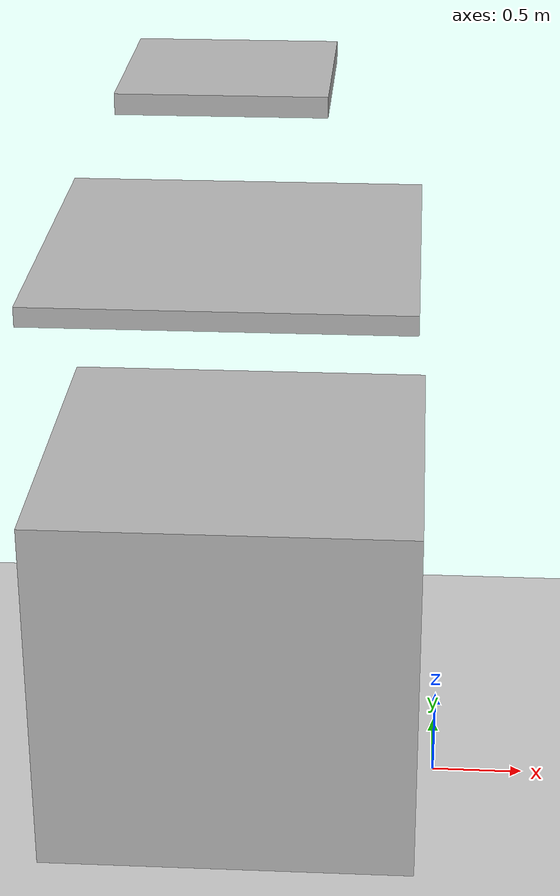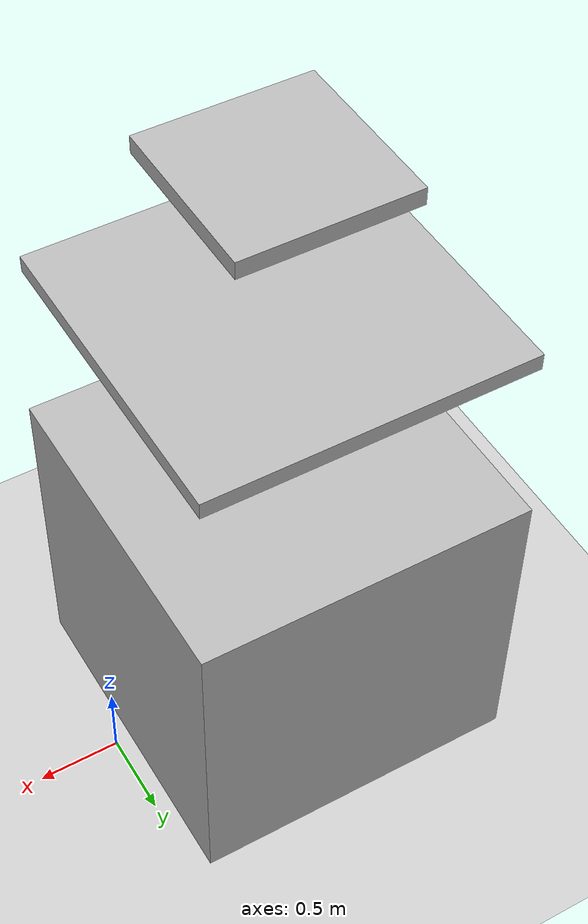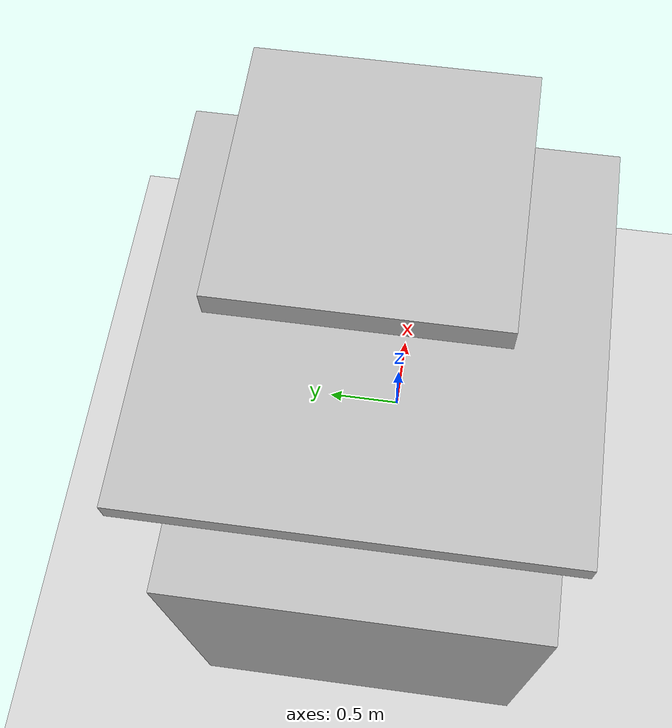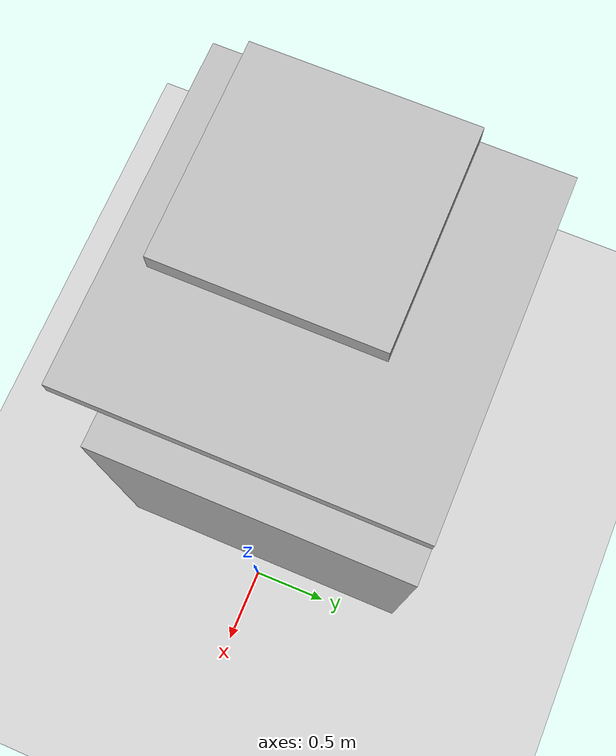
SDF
<?xml version="1.0" ?>
<sdf version='1.6'>

<world name="default">

    <!-- Global light source -->
    <include>
      <uri>model://sun</uri>
    </include>

    <!-- Ground plane -->
    <include>
      <uri>model://ground_plane</uri>
    </include>

    <!-- big box -->
    <model name="my_box">
      <pose>-1.1 0 1 0 0 0</pose>
      <static>true</static>
      <link name="fixed_box">
        <inertial>
          <mass>1000.0</mass>
          <inertia> <!-- inertias are tricky to compute -->
            <!-- http://gazebosim.org/tutorials?tut=inertia&cat=build_robot -->
            <ixx>83.0</ixx>       <!-- for a box: ixx = 0.083 * mass * (y*y + z*z) -->
            <ixy>0.0</ixy>         <!-- for a box: ixy = 0 -->
            <ixz>0.0</ixz>         <!-- for a box: ixz = 0 -->
            <iyy>83.0</iyy>       <!-- for a box: iyy = 0.083 * mass * (x*x + z*z) -->
            <iyz>0.0</iyz>         <!-- for a box: iyz = 0 -->
            <izz>83.0</izz>       <!-- for a box: izz = 0.083 * mass * (x*x + y*y) -->
          </inertia>
        </inertial>
        <collision name="collision">
          <geometry>
            <box>
              <size>2 2 2</size>
            </box>
          </geometry>
        </collision>
        <visual name="visual">
          <geometry>
            <box>
              <size>2 2 2</size>
            </box>
          </geometry>
        </visual>
      </link>
      <link name="force_plate">
        <pose>0 0 2.1 0 0 0</pose>
        <inertial>
          <mass>1.0</mass>
          <inertia> <!-- inertias are tricky to compute -->
            <!-- http://gazebosim.org/tutorials?tut=inertia&cat=build_robot -->
            <ixx>0.083</ixx>       <!-- for a box: ixx = 0.083 * mass * (y*y + z*z) -->
            <ixy>0.0</ixy>         <!-- for a box: ixy = 0 -->
            <ixz>0.0</ixz>         <!-- for a box: ixz = 0 -->
            <iyy>0.083</iyy>       <!-- for a box: iyy = 0.083 * mass * (x*x + z*z) -->
            <iyz>0.0</iyz>         <!-- for a box: iyz = 0 -->
            <izz>0.083</izz>       <!-- for a box: izz = 0.083 * mass * (x*x + y*y) -->
          </inertia>
        </inertial>
        <collision name="collision">
          <geometry>
            <box>
              <size>1.9 1.9 0.1 </size>
            </box>
          </geometry>
        </collision>
        <visual name="visual">
          <geometry>
            <box>
              <size>1.9 1.9 0.1 </size>
            </box>
          </geometry>
        </visual>
      </link>
      <joint name="joint_01" type="prismatic">
        <parent>fixed_box</parent>
        <child>force_plate</child>
        <pose>0 0 0 0 0 0</pose>
        <axis>
          <dynamics>
            <damping>0.000000</damping>
            <friction>0.000000</friction>
          </dynamics>
          <xyz>0.000000 0.000000 1.000000</xyz>
          <limit>
            <lower>0</lower>
            <upper>0.01</upper>
            <effort>1200</effort>
            <velocity>0.5</velocity>
          </limit>
        </axis>
        <sensor name='joint_01_force' type="force_torque">
          <plugin name="force_plugin" filename="libforcePlugin.so"/>
        </sensor>
      </joint>
    </model>

    <!-- Camera -->
    <gui fullscreen='0'>
      <camera name='user_camera'>
        <pose frame=''>3.60989 -8.90123 2.55734 0 0.199643 1.5722</pose>
        <view_controller>orbit</view_controller>
        <projection_type>perspective</projection_type>
      </camera>
    </gui>

    <model name="new_box">
      <link name="weight_plate">
        <pose>-1.1 0 4.0 0 0 0</pose>
        <inertial>
          <mass>1000.0</mass>
          <inertia> <!-- inertias are tricky to compute -->
            <!-- http://gazebosim.org/tutorials?tut=inertia&cat=build_robot -->
            <ixx>83.0</ixx>       <!-- for a box: ixx = 0.083 * mass * (y*y + z*z) -->
            <ixy>0.0</ixy>         <!-- for a box: ixy = 0 -->
            <ixz>0.0</ixz>         <!-- for a box: ixz = 0 -->
            <iyy>83.0</iyy>       <!-- for a box: iyy = 0.083 * mass * (x*x + z*z) -->
            <iyz>0.0</iyz>         <!-- for a box: iyz = 0 -->
            <izz>83.0</izz>       <!-- for a box: izz = 0.083 * mass * (x*x + y*y) -->
          </inertia>
        </inertial>
        <collision name="collision">
          <geometry>
            <box>
              <size>1.0 1.0 0.1 </size>
            </box>
          </geometry>
        </collision>
        <visual name="visual">
          <geometry>
            <box>
              <size>1.0 1.0 0.1 </size>
            </box>
          </geometry>
        </visual>
      </link>
    </model>

  </world>
</sdf>
